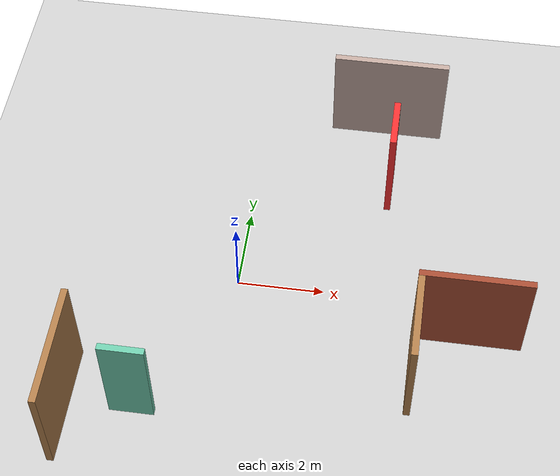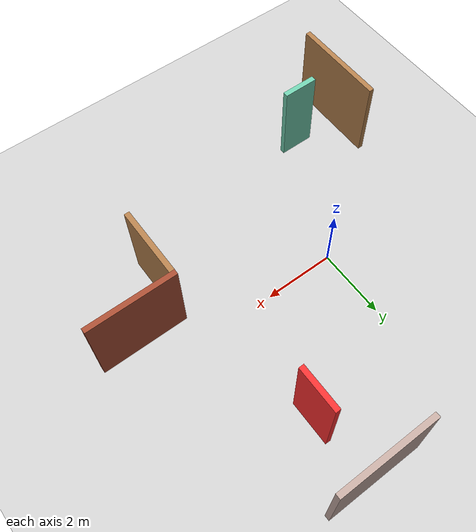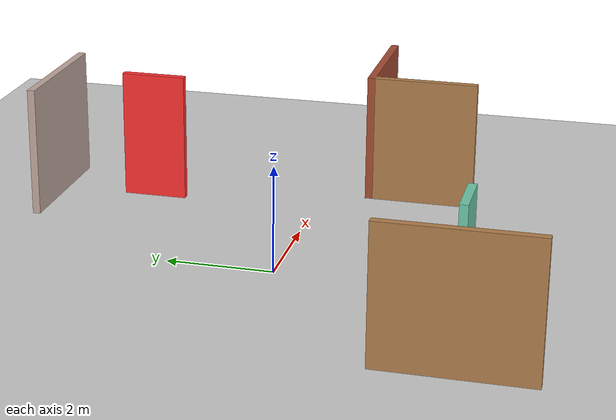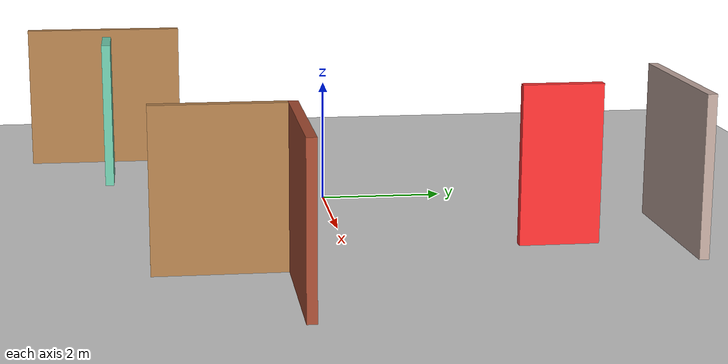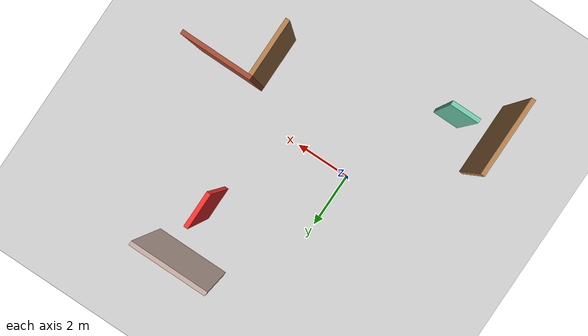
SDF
<sdf version="1.6">
 <world name="default">
  <plugin name="welcome" filename="libwelcome_message.so"/>
  <light name="sun" type="directional">
   <pose>0 0 10 0 -0 0</pose>
   <diffuse>0.8 0.8 0.8 1</diffuse>
   <specular>0.1 0.1 0.1 1</specular>
   <attenuation>
    <range>1000</range>
    <constant>0.9</constant>
    <linear>0.01</linear>
    <quadratic>0.001</quadratic>
   </attenuation>
   <direction>-0.5 0.5 -1</direction>
  </light>
  <model name="ground_plane">
   <static>1</static>
   <link name="link">
    <collision name="collision">
     <geometry><plane><normal>0 0 1</normal><size>100 100</size></plane></geometry>
     <surface><friction><ode><mu>100</mu><mu2>50</mu2></ode></friction></surface>
    </collision>
    <visual name="visual">
     <cast_shadows>0</cast_shadows>
     <geometry><plane><normal>0 0 1</normal><size>100 100</size></plane></geometry>
     <material>
      <script><uri>file://media/materials/scripts/gazebo.material</uri><name>Gazebo/Grey</name></script>
     </material>
    </visual>
   </link>
  </model>
  <gravity>0 0 -9.8</gravity>
  <magnetic_field>6e-06 2.3e-05 -4.2e-05</magnetic_field>
  <atmosphere type="adiabatic"/>
  <physics name="default_physics" default="0" type="ode">
   <max_step_size>0.001</max_step_size>
   <real_time_factor>1</real_time_factor>
   <real_time_update_rate>1000</real_time_update_rate>
  </physics>
  <scene><ambient>0.4 0.4 0.4 1</ambient><background>0.7 0.7 0.7 1</background><shadows>1</shadows></scene>
  <spherical_coordinates>
   <surface_model>EARTH_WGS84</surface_model>
   <latitude_deg>0</latitude_deg>
   <longitude_deg>0</longitude_deg>
   <elevation>0</elevation>
   <heading_deg>0</heading_deg>
  </spherical_coordinates>
  <model name="wall">
   <pose>0.523449 0.0913 0 0 -0 0</pose>
   <link name="Wall_10">
    <collision name="Wall_10_Collision">
     <geometry><box><size>17.8282 0.15 2.5</size></box></geometry>
     <pose>0 0 1.25 0 -0 0</pose>
    </collision>
    <visual name="Wall_10_Visual">
     <pose>0 0 1.25 0 -0 0</pose>
     <geometry><box><size>17.8282 0.15 2.5</size></box></geometry>
     <material>
      <script><uri>file://media/materials/scripts/gazebo.material</uri><name>Gazebo/Grey</name></script>
      <ambient>255 215 0 1</ambient>
     </material>
     <meta><layer>0</layer></meta>
    </visual>
    <pose>0.010108 -8.925 0 0 -0 0</pose>
   </link>
   <link name="Wall_11">
    <collision name="Wall_11_Collision">
     <geometry><box><size>18 0.15 2.5</size></box></geometry>
     <pose>0 0 1.25 0 -0 0</pose>
    </collision>
    <visual name="Wall_11_Visual">
     <pose>0 0 1.25 0 -0 0</pose>
     <geometry><box><size>18 0.15 2.5</size></box></geometry>
     <material>
      <script><uri>file://media/materials/scripts/gazebo.material</uri><name>Gazebo/Grey</name></script>
      <ambient>255 215 0 1</ambient>
     </material>
     <meta><layer>0</layer></meta>
    </visual>
    <pose>8.84911 0 0 0 -0 1.5708</pose>
   </link>
   <link name="Wall_12">
    <collision name="Wall_12_Collision">
     <geometry><box><size>17.8282 0.15 2.5</size></box></geometry>
     <pose>0 0 1.25 0 -0 0</pose>
    </collision>
    <visual name="Wall_12_Visual">
     <pose>0 0 1.25 0 -0 0</pose>
     <geometry><box><size>17.8282 0.15 2.5</size></box></geometry>
     <material>
      <script><uri>file://media/materials/scripts/gazebo.material</uri><name>Gazebo/Grey</name></script>
      <ambient>255 215 0 1</ambient>
     </material>
     <meta><layer>0</layer></meta>
    </visual>
    <pose>0.010108 8.925 0 0 -0 3.14159</pose>
   </link>
   <link name="Wall_9">
    <pose>-8.82889 0 0 0 0 -1.5708</pose>
    <visual name="Wall_9_Visual_0">
     <pose>-4.57116 0 1.25 0 -0 0</pose>
     <geometry><box><size>8.85768 0.15 2.5</size></box></geometry>
     <material>
      <script><uri>file://media/materials/scripts/gazebo.material</uri><name>Gazebo/Grey</name></script>
      <ambient>255 215 0 1</ambient>
     </material>
     <meta><layer>0</layer></meta>
    </visual>
    <collision name="Wall_9_Collision_0">
     <geometry><box><size>8.85768 0.15 2.5</size></box></geometry>
     <pose>-4.57116 0 1.25 0 -0 0</pose>
    </collision>
    <visual name="Wall_9_Visual_1">
     <pose>4.87884 0 1.25 0 -0 0</pose>
     <geometry><box><size>8.24232 0.15 2.5</size></box></geometry>
     <material>
      <script><uri>file://media/materials/scripts/gazebo.material</uri><name>Gazebo/Grey</name></script>
      <ambient>255 215 0 1</ambient>
     </material>
     <meta><layer>0</layer></meta>
    </visual>
    <collision name="Wall_9_Collision_1">
     <geometry><box><size>8.24232 0.15 2.5</size></box></geometry>
     <pose>4.87884 0 1.25 0 -0 0</pose>
    </collision>
    <visual name="Wall_9_Visual_2">
     <pose>0.30768 0 2.25 0 -0 0</pose>
     <geometry><box><size>0.9 0.15 0.5</size></box></geometry>
     <material>
      <script><uri>file://media/materials/scripts/gazebo.material</uri><name>Gazebo/Grey</name></script>
      <ambient>255 215 0 1</ambient>
     </material>
     <meta><layer>0</layer></meta>
    </visual>
    <collision name="Wall_9_Collision_2">
     <geometry><box><size>0.9 0.15 0.5</size></box></geometry>
     <pose>0.30768 0 2.25 0 -0 0</pose>
    </collision>
   </link>
   <link name="Wall_222">
    <collision name="Wall_222_Collision">
     <geometry><box><size>2.5 0.15 2.5</size></box></geometry>
     <pose>0 0 1.25 0 -0 0</pose>
    </collision>
    <visual name="Wall_222_Visual">
     <pose>0 0 1.25 0 -0 0</pose>
     <geometry><box><size>2.5 0.15 2.5</size></box></geometry>
     <material>
      <script><uri>file://media/materials/scripts/gazebo.material</uri><name>Gazebo/Bricks</name></script>
      <ambient>1 1 1 1</ambient>
     </material>
     <meta><layer>0</layer></meta>
    </visual>
    <pose>4.84326 -0.989786 0 0 -0 3.14159</pose>
   </link>
   <link name="Wall_433">
    <collision name="Wall_433_Collision">
     <geometry><box><size>2 0.15 2.5</size></box></geometry>
     <pose>0 0 1.25 0 -0 0</pose>
    </collision>
    <visual name="Wall_433_Visual">
     <pose>0 0 1.25 0 -0 0</pose>
     <geometry><box><size>2 0.15 2.5</size></box></geometry>
     <material>
      <script><uri>file://media/materials/scripts/gazebo.material</uri><name>Gazebo/Wood</name></script>
      <ambient>1 1 1 1</ambient>
     </material>
     <meta><layer>0</layer></meta>
    </visual>
    <pose>3.66405 -2.06473 0 0 -0 1.5708</pose>
   </link>
   <link name="Wall_20">
    <collision name="Wall_20_Collision">
     <geometry><box><size>2.75 0.15 2.5</size></box></geometry>
     <pose>0 0 1.25 0 -0 0</pose>
    </collision>
    <visual name="Wall_20_Visual">
     <pose>0 0 1.25 0 -0 0</pose>
     <geometry><box><size>2.75 0.15 2.5</size></box></geometry>
     <material>
      <script><uri>file://media/materials/scripts/gazebo.material</uri><name>Gazebo/Wood</name></script>
      <ambient>1 1 1 1</ambient>
     </material>
     <meta><layer>0</layer></meta>
    </visual>
    <pose>-3.77471 -3.81485 0 0 -0 1.5708</pose>
   </link>
   <link name="Wall_21">
    <collision name="Wall_21_Collision">
     <geometry><box><size>2.75 0.15 2.5</size></box></geometry>
     <pose>0 0 1.25 0 -0 0</pose>
    </collision>
    <visual name="Wall_21_Visual">
     <pose>0 0 1.25 0 -0 0</pose>
     <geometry><box><size>2.75 0.15 2.5</size></box></geometry>
     <material>
      <script><uri>file://media/materials/scripts/gazebo.material</uri><name>Gazebo/Grey</name></script>
      <ambient>0.760784 0.662745 0.627451 1</ambient>
     </material>
     <meta><layer>0</layer></meta>
    </visual>
    <pose>2.47471 5.11485 0 0 -0 0</pose>
   </link>
   <link name="Wall_30">
    <collision name="Wall_30_Collision">
     <geometry><box><size>1 0.15 2.5</size></box></geometry>
     <pose>0 0 1.25 0 -0 0</pose>
    </collision>
    <visual name="Wall_30_Visual">
     <pose>0 0 1.25 0 -0 0</pose>
     <geometry><box><size>1 0.15 2.5</size></box></geometry>
     <material>
      <script><uri>file://media/materials/scripts/gazebo.material</uri><name>Gazebo/Grey</name></script>
      <ambient>0.435294 0.796078 0.67451 1</ambient>
     </material>
     <meta><layer>0</layer></meta>
    </visual>
    <pose>-2.29674 -3.73587 0 0 -0 3.14159</pose>
   </link>
   <link name="Wall_31">
    <collision name="Wall_31_Collision">
     <geometry><box><size>1.25 0.15 2.5</size></box></geometry>
     <pose>0 0 1.25 0 -0 0</pose>
    </collision>
    <visual name="Wall_31_Visual">
     <pose>0 0 1.25 0 -0 0</pose>
     <geometry><box><size>1.25 0.15 2.5</size></box></geometry>
     <material>
      <script><uri>file://media/materials/scripts/gazebo.material</uri><name>Gazebo/Grey</name></script>
      <ambient>1 0.192157 0.192157 1</ambient>
     </material>
     <meta><layer>0</layer></meta>
    </visual>
    <pose>2.72174 3.18587 0 0 0 -1.5708</pose>
   </link>
   <static>1</static>
  </model>
 </world>
</sdf>
